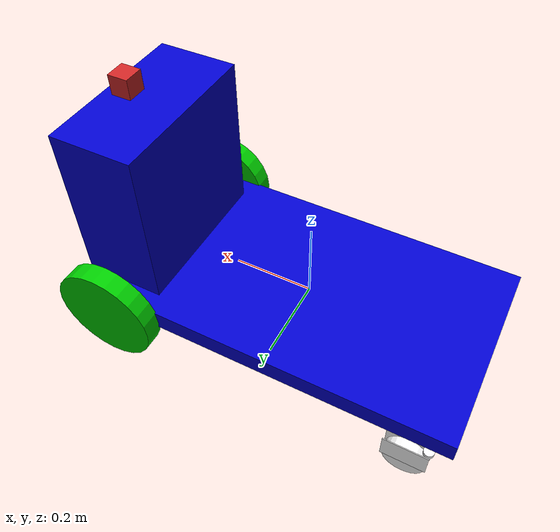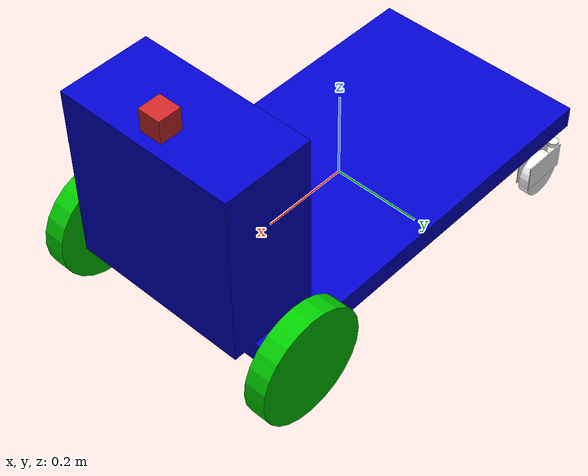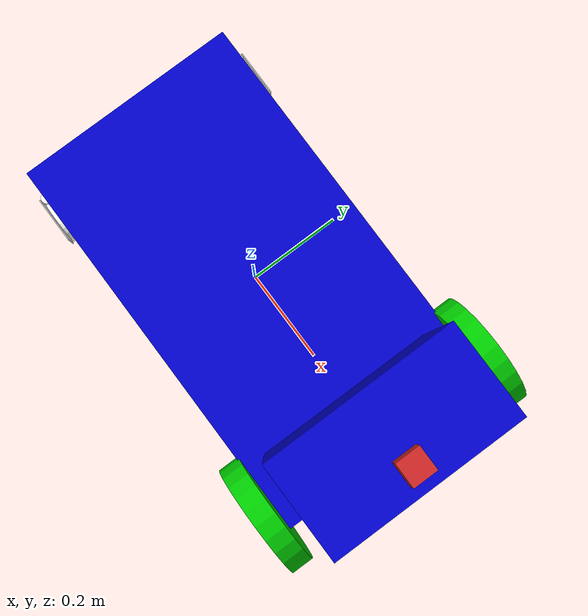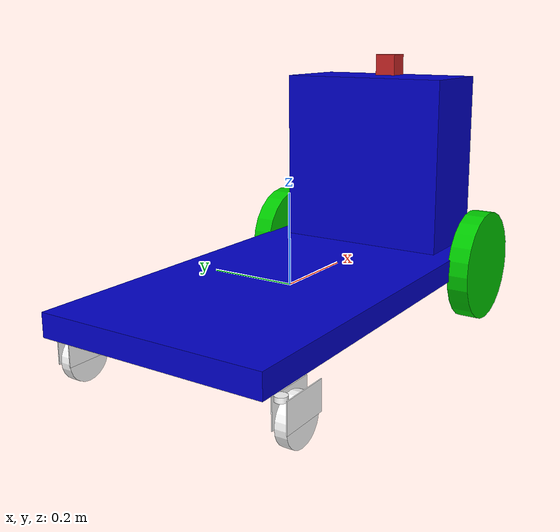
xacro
<?xml version="1.0"?>
<robot xmlns:xacro="http://www.ros.org/wiki/xacro" name="porter">

	<!-- Parameters of the chasiss -->
	<xacro:property name="ch_length" value="0.9" />
	<xacro:property name="ch_width" value="0.5" />
	<xacro:property name="ch_thickness" value="0.05" />
	<xacro:property name="ch_mass" value="15"/>
	<xacro:property name="cbox_length" value="0.2" />
	<xacro:property name="cbox_width" value="0.4" />
	<xacro:property name="cbox_thickness" value="0.4" />
	<xacro:property name="cbox_mass" value="3"/>

	<!-- Parameters of the chasiss -->
	<xacro:property name="camera_link" value="0.05" />

	<!-- Parameters of the actuated wheels -->
	<xacro:property name="ac_wh_radius" value="0.127" />
	<xacro:property name="ac_wh_thickness" value="0.048" />
	<xacro:property name="ac_wh_mass" value="3"/>

	<!-- Parameters of the free wheels -->
	<xacro:property name="fr_wh_radius" value="0.049" />
	<xacro:property name="fr_wh_thickness" value="0.024" />
	<xacro:property name="fr_wh_mass" value="1"/>
	<xacro:property name="main_holder_mass" value="0.3"/>
	<xacro:property name="supp_holder_mass" value="0.6"/>

	<!-- Material block -->
	<material name="blue">
		<color rgba="0 0 0.8 1"/>
	</material>

	<material name="white">
		<color rgba="1 1 1 1"/>
	</material>

	<material name="green">
		<color rgba="0 0.8 0 1"/>
	</material>

	<!-- Some useful macroses -->

	<!-- Workpieces inertia -->
	<xacro:macro name="wh_inertial" params="mass radius thickness">
		<inertial>
			<mass value="${mass}" />
			<inertia ixx="${1/12*mass*(3*radius*radius+thickness*thickness)}"
				ixy="0.0" ixz="0.0"
				iyy="${1/2*mass*radius*radius}"
				iyz="0.0"
				izz="${1/12*mass*(3*radius*radius+thickness*thickness)}" />
		</inertial>
	</xacro:macro>

	<xacro:macro name="caster_wh_holder_main_inertial" params="mass cradius cthickness">
		<inertial>
			<mass value="${mass}" />
			<inertia ixx="${1/12*mass*(3*cradius*cradius+cthickness*cthickness)}"
				ixy="0.0" ixz="0.0"
				iyy="${1/12*mass*(3*cradius*cradius+cthickness*cthickness)}"
				iyz="0.0"
				izz="${1/2*mass*cradius*cradius}" />
		</inertial>
	</xacro:macro>

	<xacro:macro name="caster_wh_holder_supp_inertial" params="mass length width thickness">
		<inertial>
			<mass value="${mass}" />
			<inertia ixx="${1/12*mass*(width*width+thickness*thickness)}"
				ixy="0.0" ixz="0.0"
				iyy="${1/12*mass*(length*length+thickness*thickness)}"
				iyz="0.0"
				izz="${1/12*mass*(length*length+width*width)}" />
		</inertial>
	</xacro:macro>

	<xacro:macro name="ch_inertial" params="mass length width thickness">
		<inertial>
			<mass value="${mass}" />
			<inertia ixx="${1/12*mass*(width*width+thickness*thickness)}"
				ixy="0.0" ixz="0.0"
				iyy="${1/12*mass*(length*length+thickness*thickness)}"
				iyz="0.0"
				izz="${1/12*mass*(length*length+width*width)}" />
		</inertial>
	</xacro:macro>

	<!-- Actuated wheel macros -->
	<xacro:macro name="actuated_wheel" params="prefix *position">
	<link name="${prefix}_actuated_wheel">
		<visual>
			<geometry>
				<cylinder length="${ac_wh_thickness}" radius="${ac_wh_radius}"/>
			</geometry>
			<origin rpy="1.57075 0 0" xyz="0 0 0"/>
			<material name="green"/>
		</visual>
		<collision>
			<geometry>
				<cylinder length="${ac_wh_thickness}" radius="${ac_wh_radius}"/>
			</geometry>
			<origin rpy="1.57075 0 0" xyz="0 0 0"/>
		</collision>
		<xacro:wh_inertial mass="${ac_wh_mass}" radius="${ac_wh_radius}" thickness="${ac_wh_thickness}"/>
	</link>

	<joint name="chasiss_to_${prefix}_actuated_wheel" type="continuous">
		<parent link="chasiss"/>
		<child link="${prefix}_actuated_wheel"/>
		<axis xyz="0 1 0"/>
		<xacro:insert_block name="position" />
	</joint>

	<transmission name="${prefix}_actuated_wheel_trans">
		<type>transmission_interface/SimpleTransmission</type>
		<actuator name="${prefix}_actuated_wheel_motor">
			<mechanicalReduction>1</mechanicalReduction>
		</actuator>
		<joint name="chasiss_to_${prefix}_actuated_wheel">
			<hardwareInterface>hardware_interface/VelocityJointInterface</hardwareInterface>
		</joint>
	</transmission>

	<gazebo reference="${prefix}_actuated_wheel">
		<fdir1>1 0 0</fdir1>
		<mu1 value="200.0"/>
		<mu2 value="100.0"/>
		<kp value="10000000.0" />
		<kd value="1.0" />
		<material>Gazebo/Grey</material>
	</gazebo>
	</xacro:macro>

	<!-- Free (caster) wheel macros -->
	<xacro:macro name="free_wheel" params="prefix *position">

	<link name="${prefix}_free_wheel_holder_main">
		<visual>
			<geometry>
				<cylinder length="0.01" radius="0.012"/>
			</geometry>
			<origin rpy="0 0 0" xyz="0 0 0"/>
			<material name="white"/>
		</visual>
		<collision>
			<geometry>
				<cylinder length="0.01" radius="0.012"/>
			</geometry>
			<origin rpy="0 0 0" xyz="0 0 0"/>
		</collision>
		<xacro:caster_wh_holder_main_inertial mass="${main_holder_mass}" cradius="0.012" cthickness="0.02"/>
	</link>

 	<joint name="chasiss_to_${prefix}_free_wheel_holder_main" type="continuous">
		<parent link="chasiss"/>
		<child link="${prefix}_free_wheel_holder_main"/>
		<axis xyz="0 0 1"/>
		<xacro:insert_block name="position" />
	</joint>

	<transmission name="${prefix}_free_wheel_holder_main_trans">
		<type>transmission_interface/SimpleTransmission</type>
		<actuator name="${prefix}_free_wheel_holder_main_ax">
			<mechanicalReduction>1</mechanicalReduction>
		</actuator>
		<joint name="chasiss_to_${prefix}_free_wheel_holder_main">
			<hardwareInterface>hardware_interface/VelocityJointInterface</hardwareInterface>
		</joint>
	</transmission>

	<link name="${prefix}_free_wheel_holder_supp">
		<visual>
			<geometry>
				<box size="0.104 0.002 0.06"/>
			</geometry>
			<origin rpy="0 0 0" xyz="0 0.0148 0"/>
			<material name="white"/>
		</visual>
		<visual>
			<geometry>
				<box size="0.104 0.002 0.06"/>
			</geometry>
			<origin rpy="0 0 0" xyz="0 -0.0148 0"/>
			<material name="white"/>
		</visual>
		<xacro:caster_wh_holder_supp_inertial mass="${supp_holder_mass}" length="0.104" width="0.004" thickness="0.06"/>
	</link>

	<joint name="${prefix}_free_wheel_holder_main_to_supp" type="fixed">
		<parent link="${prefix}_free_wheel_holder_main"/>
		<child link="${prefix}_free_wheel_holder_supp"/>
		<origin rpy="0 0 0" xyz="0.046 0.0 -0.03"/>
	</joint>

	<link name="${prefix}_free_wheel">
		<visual>
			<geometry>
				<cylinder length="${fr_wh_thickness}" radius="${fr_wh_radius}"/>
			</geometry>
			<origin rpy="1.57075 0 0" xyz="0 0 0"/>
			<material name="white"/>
		</visual>
		<collision>
			<geometry>
				<cylinder length="${fr_wh_thickness}" radius="${fr_wh_radius}"/>
			</geometry>
			<origin rpy="1.57075 0 0" xyz="0 0 0"/>
		</collision>
		<xacro:wh_inertial mass="${fr_wh_mass}" radius="${fr_wh_radius}" thickness="${fr_wh_thickness}"/>
	</link>

	<joint name="holder_to_${prefix}_free_wheel" type="continuous">
		<parent link="${prefix}_free_wheel_holder_supp"/>
		<child link="${prefix}_free_wheel"/>
		<axis xyz="0 1 0"/>
		<origin rpy="0 0 0" xyz="0 0 -0.026"/>
	</joint>

	<transmission name="${prefix}_free_wheel_trans">
		<type>transmission_interface/SimpleTransmission</type>
		<actuator name="${prefix}_free_wheel_ax">
			<mechanicalReduction>1</mechanicalReduction>
		</actuator>
		<joint name="holder_to_${prefix}_free_wheel">
			<hardwareInterface>hardware_interface/VelocityJointInterface</hardwareInterface>
		</joint>
	</transmission>

	<gazebo reference="${prefix}_free_wheel_holder_main">
		<mu1 value="200.0"/>
		<mu2 value="100.0"/>
		<kp value="2147483647.0" />
		<kd value="1.0" />
		<material>Gazebo/White</material>
	</gazebo>

	<gazebo reference="${prefix}_free_wheel_holder_supp">
		<mu1 value="200.0"/>
		<mu2 value="100.0"/>
		<kp value="2147483647.0" />
		<kd value="1.0" />
		<material>Gazebo/White</material>
	</gazebo>

	<gazebo reference="${prefix}_free_wheel">
		<fdir1>1 0 0</fdir1>
		<mu1 value="200.0"/>
		<mu2 value="40.0"/>
		<slip2 value="0.05"/>
		<kp value="10000000.0" />
		<kd value="1.0" />
		<material>Gazebo/Grey</material>
	</gazebo>
	</xacro:macro>
	<!-- End of macroses -->

	<!-- Here actual model begins -->
	<link name="chasiss">
		<visual>
			<geometry>
				<box size="${ch_length} ${ch_width} ${ch_thickness}"/>
			</geometry>
			<origin rpy="0 0 0" xyz="0 0 0"/>
			<material name="blue"/>
		</visual>
		<collision>
			<geometry>
				<box size="${ch_length} ${ch_width} ${ch_thickness}"/>
			</geometry>
		</collision>
		<xacro:ch_inertial mass="${ch_mass}" length="${ch_length}" width="${ch_width}" thickness="${ch_thickness}"/>
	</link>

	<gazebo reference="chasiss">
		<mu1 value="200.0"/>
		<mu2 value="100.0"/>
		<kp value="2147483647.0" />
		<kd value="1.0" />
		<material>Gazebo/White</material>
	</gazebo>

 	<link name="control_box">
		<visual>
			<geometry>
				<box size="${cbox_length} ${cbox_width} ${cbox_thickness}"/>
			</geometry>
			<origin rpy="0 0 0" xyz="0 0 0"/>
			<material name="blue"/>
		</visual>
		<collision>
			<geometry>
				<box size="${cbox_length} ${cbox_width} ${cbox_thickness}"/>
			</geometry>
		</collision>
		<xacro:ch_inertial mass="${cbox_mass}" length="${cbox_length}" width="${cbox_width}" thickness="${cbox_thickness}"/>
	</link>

	<joint name="chasiss_to_control_box" type="fixed">
		<parent link="chasiss"/>
		<child link="control_box"/>
		<origin rpy="0 0 0" xyz="0.4 0.0 ${(cbox_thickness/2+ch_thickness/2)}"/>
	</joint>

	<xacro:actuated_wheel prefix="right">
		<origin xyz="0.4 -0.270 -0.01"/>
	</xacro:actuated_wheel>

	<xacro:actuated_wheel prefix="left">
		<origin xyz="0.4 0.270 -0.01"/>
	</xacro:actuated_wheel>

	<xacro:free_wheel prefix="right">
		<origin xyz="-0.4 -0.25 -0.038"/>
	</xacro:free_wheel>

	<xacro:free_wheel prefix="left">
		<origin xyz="-0.4 0.25 -0.038"/>
	</xacro:free_wheel>

	<joint name="camera_joint" type="fixed">
		<axis xyz="0 0 0" />
		<origin xyz="${camera_link} 0 ${cbox_thickness/2 + camera_link/2}" rpy="0 0 0"/>
		<parent link="control_box"/>
		<child link="camera_main"/>
	</joint>

  <!-- Camera -->
	<link name="camera_main">
		<collision>
			<origin xyz="0 0 0" rpy="0 0 0"/>
			<geometry>
				<box size="${camera_link} ${camera_link} ${camera_link}"/>
			</geometry>
		</collision>

		<visual>
			<origin xyz="0 0 0" rpy="0 0 0"/>
			<geometry>
				<box size="${camera_link} ${camera_link} ${camera_link}"/>
			</geometry>
			<material name="red"/>
		</visual>

		<inertial>
			<mass value="1e-5" />
			<origin xyz="0 0 0" rpy="0 0 0"/>
			<inertia ixx="1e-6" ixy="0" ixz="0" iyy="1e-6" iyz="0" izz="1e-6" />
		</inertial>
	</link>

	<gazebo reference="camera_main">
	<sensor type="camera" name="camera_main">
		<update_rate>30.0</update_rate>
		<camera name="head">
		<horizontal_fov>1.3962634</horizontal_fov>
		<image>
			<width>800</width>
			<height>800</height>
			<format>R8G8B8</format>
		</image>
		<clip>
			<near>0.02</near>
			<far>300</far>
		</clip>
		<noise>
			<type>gaussian</type>
			<!-- Noise is sampled independently per pixel on each frame.
			That pixel's noise value is added to each of its color
			channels, which at that point lie in the range [0,1]. -->
			<mean>0.0</mean>
			<stddev>0.007</stddev>
		</noise>
		</camera>
		<plugin name="camera_controller" filename="libgazebo_ros_camera.so">
		<alwaysOn>true</alwaysOn>
		<updateRate>0.0</updateRate>
		<cameraName>porter/camera_main</cameraName>
		<imageTopicName>image_raw</imageTopicName>
		<cameraInfoTopicName>camera_info</cameraInfoTopicName>
		<frameName>camera_main</frameName>
		<hackBaseline>0.07</hackBaseline>
		<distortionK1>0.0</distortionK1>
		<distortionK2>0.0</distortionK2>
		<distortionK3>0.0</distortionK3>
		<distortionT1>0.0</distortionT1>
		<distortionT2>0.0</distortionT2>
		</plugin>
	</sensor>
	</gazebo>

	<gazebo>
		<plugin name="gazebo_ros_control" filename="libgazebo_ros_control.so">
			<robotNamespace>/</robotNamespace>
		</plugin>
	</gazebo>

</robot>
